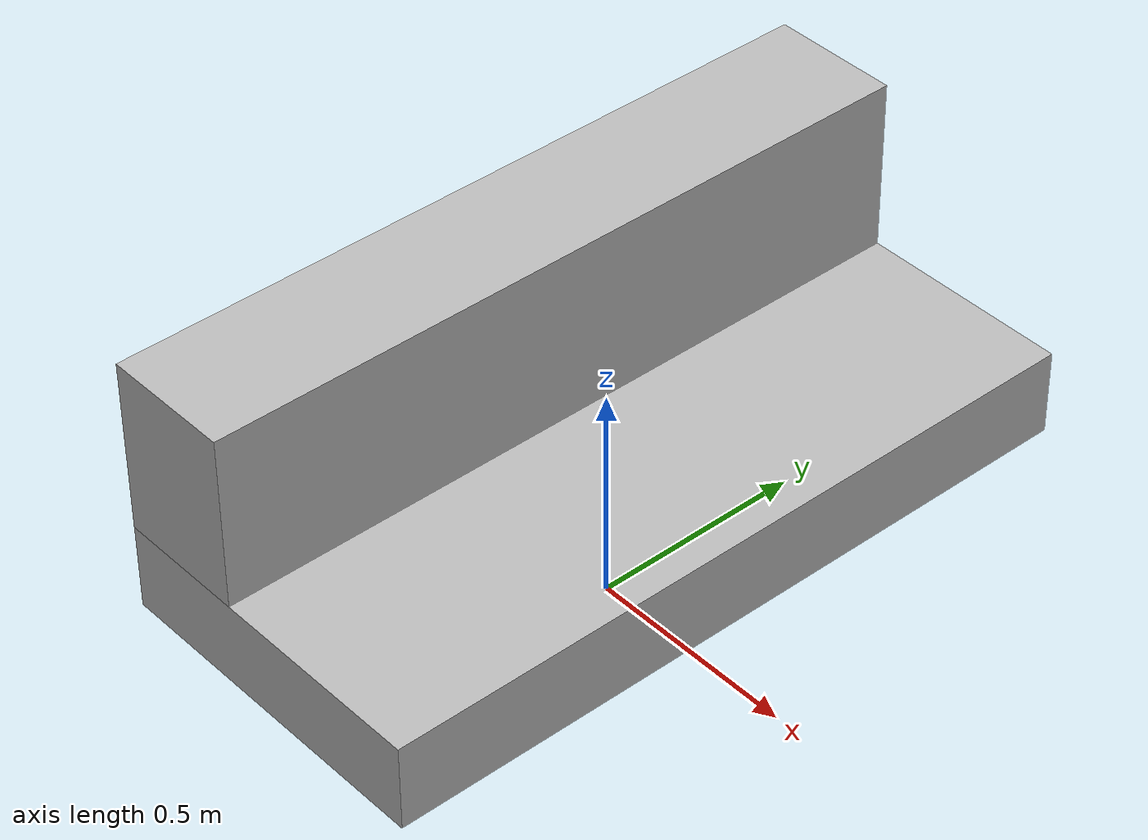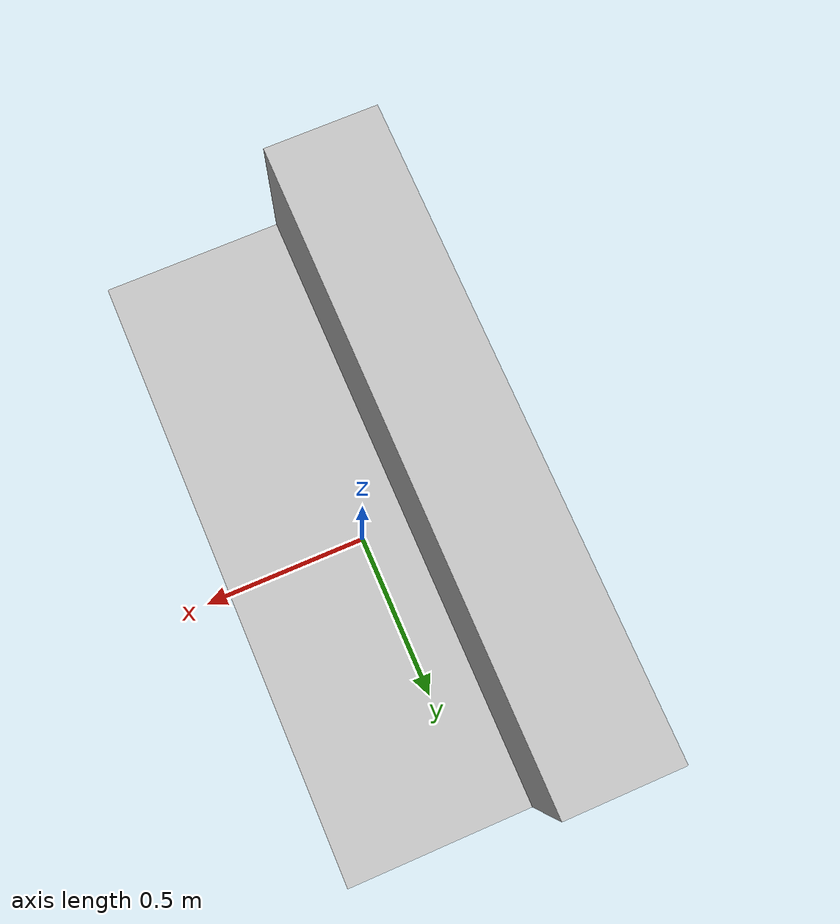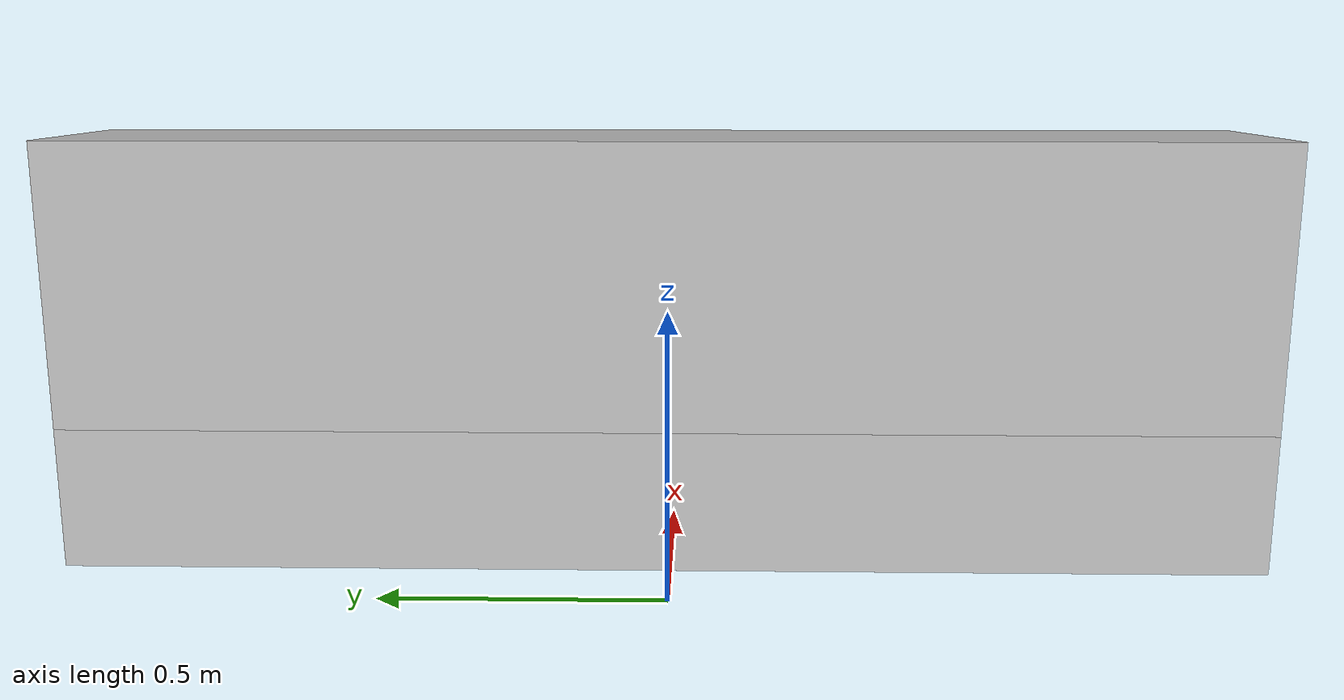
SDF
<?xml version="1.0"?>
<sdf version="1.6">
  <model name="rwc2018/couch">
    <link name="1_link">
      <collision name="1_col">
        <geometry>
          <box>
            <size>0.8 1.7 0.2</size>
          </box>
        </geometry>
      </collision>
      <visual name="1_vis">
        <geometry>
          <box>
            <size>0.8 1.7 0.2</size>
          </box>
        </geometry>
      </visual>
      <pose>0 0 0.3 0 0 0</pose>
    </link>
    <link name="2_link">
      <collision name="2_col">
        <geometry>
          <box>
            <size>0.3 1.7 0.4</size>
          </box>
        </geometry>
      </collision>
      <visual name="2_vis">
        <geometry>
          <box>
            <size>0.3 1.7 0.4</size>
          </box>
        </geometry>
      </visual>
      <pose>-0.25 0 0.6 0 0 0</pose>
    </link>
    <link name="on_top_of">
      <virtual_volume name="on_top_of_vv">
        <geometry>
          <box>
            <size>0.41 1.64 0.32</size>
          </box>
        </geometry>
        <pose>0.135 0.0 0.58 0 0 0</pose>
      </virtual_volume>
    </link>
    <link name="in_front_of">
      <virtual_volume name="in_front_of_vv">
        <geometry>
          <box>
            <size>0.4 2.0 0.01</size>
          </box>
        </geometry>
        <pose>0.9 0.0 0.005 0 0 0</pose>
      </virtual_volume>
    </link>
    <static>true</static>
  </model>
</sdf>
